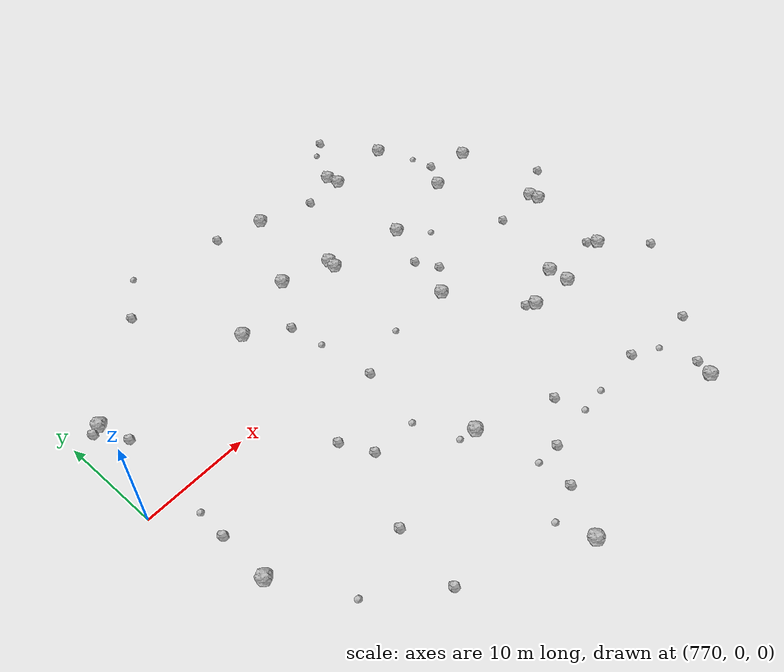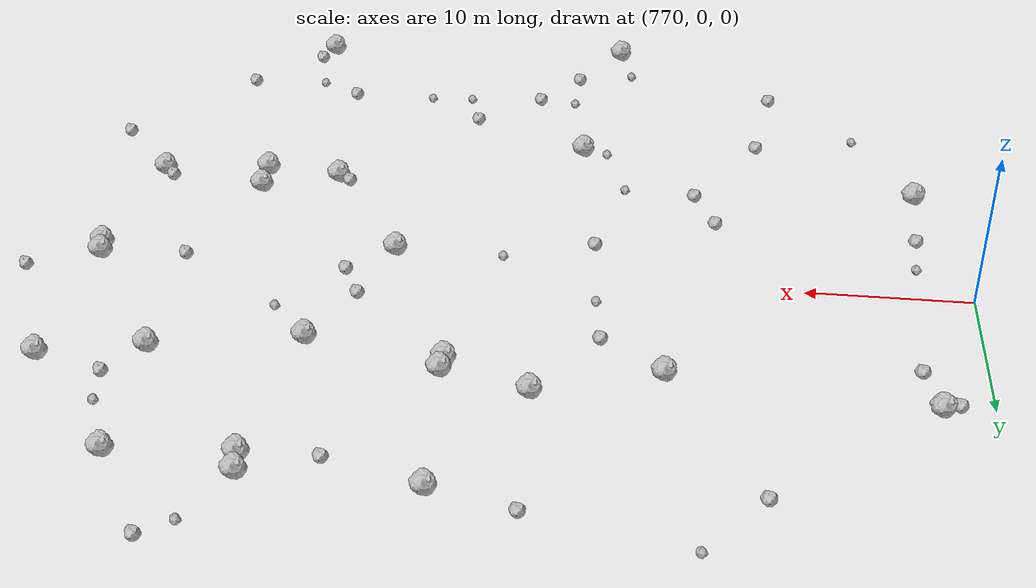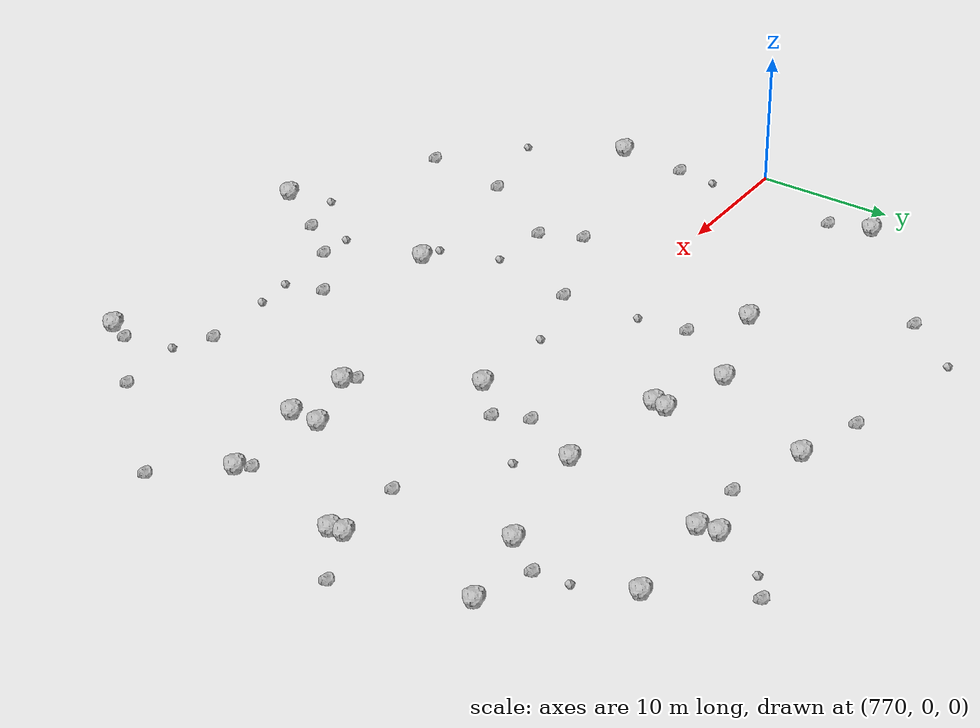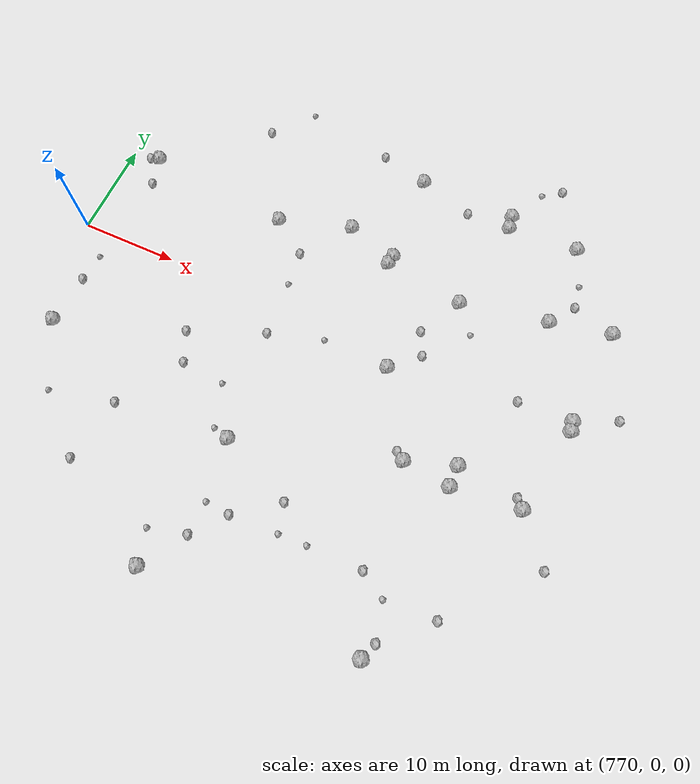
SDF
<sdf version="1.6">
 <world name="default">
  <include><uri>model://sun</uri></include>
  <model name="rock1_20_4">
   <include><uri>model://rock1</uri><pose>800.7657375115118 9.613420747111128 0.5 0 0 0</pose></include>
  </model>
  <model name="rock1_20_5">
   <include><uri>model://rock1</uri><pose>823.0574693880428 -0.7277839166162607 0.5 0 0 0</pose></include>
  </model>
  <model name="rock1_20_6">
   <include><uri>model://rock1</uri><pose>817.6990117163945 9.102365169904786 0.5 0 0 0</pose></include>
  </model>
  <model name="rock1_20_7">
   <include><uri>model://rock1</uri><pose>810.356077601596 19.106996605821976 0.5 0 0 0</pose></include>
  </model>
  <model name="rock1_20_8">
   <include><uri>model://rock1</uri><pose>772.695560163988 -10.854693982110902 0.5 0 0 0</pose></include>
  </model>
  <model name="rock1_20_9">
   <include><uri>model://rock1</uri><pose>800.3334926557901 19.329110910654975 0.5 0 0 0</pose></include>
  </model>
  <model name="rock1_20_10">
   <include><uri>model://rock1</uri><pose>821.2747007292661 -9.519405258005257 0.5 0 0 0</pose></include>
  </model>
  <model name="rock1_20_11">
   <include><uri>model://rock1</uri><pose>800.6173780214094 8.626929190025656 0.5 0 0 0</pose></include>
  </model>
  <model name="rock1_20_12">
   <include><uri>model://rock1</uri><pose>788.1683028917378 8.709266609707214 0.5 0 0 0</pose></include>
  </model>
  <model name="rock1_20_13">
   <include><uri>model://rock1</uri><pose>814.5604219035746 -10.267454587844597 0.5 0 0 0</pose></include>
  </model>
  <model name="rock1_20_14">
   <include><uri>model://rock1</uri><pose>795.5524031208715 10.996119878751372 0.5 0 0 0</pose></include>
  </model>
  <model name="rock1_20_15">
   <include><uri>model://rock1</uri><pose>794.0762119572984 -14.548475158067449 0.5 0 0 0</pose></include>
  </model>
  <model name="rock1_20_16">
   <include><uri>model://rock1</uri><pose>814.5782120369629 -8.131982218055398 0.5 0 0 0</pose></include>
  </model>
  <model name="rock1_20_17">
   <include><uri>model://rock1</uri><pose>809.803125878588 -9.77594432354579 0.5 0 0 0</pose></include>
  </model>
  <model name="rock1_20_18">
   <include><uri>model://rock1</uri><pose>810.5427989974902 17.689002465360502 0.5 0 0 0</pose></include>
  </model>
  <model name="rock1_20_19">
   <include><uri>model://rock1</uri><pose>792.1384223914104 -28.032713333320356 0.5 0 0 0</pose></include>
  </model>
  <model name="rock1_20_20">
   <include><uri>model://rock1</uri><pose>822.9083193554769 0.24401712148151944 0.5 0 0 0</pose></include>
  </model>
  <model name="rock1_20_21">
   <include><uri>model://rock1</uri><pose>772.9733293186408 10.310255731428796 0.5 0 0 0</pose></include>
  </model>
  <model name="rock1_20_22">
   <include><uri>model://rock1</uri><pose>804.914500445096 -1.8892863499394856 0.5 0 0 0</pose></include>
  </model>
  <model name="rock1_20_23">
   <include><uri>model://rock1</uri><pose>812.9977964297371 -26.872935500310994 0.5 0 0 0</pose></include>
  </model>
  <model name="rock1_20_24">
   <include><uri>model://rock1</uri><pose>808.8498688897471 7.431271994059948 0.5 0 0 0</pose></include>
  </model>
  <model name="rock1_20_25">
   <include><uri>model://rock1</uri><pose>817.7799692125452 18.110922802134944 0.5 0 0 0</pose></include>
  </model>
  <model name="rock1_20_26">
   <include><uri>model://rock1</uri><pose>823.8151957602448 10.422299464135804 0.5 0 0 0</pose></include>
  </model>
  <model name="rock2_20_0">
   <include><uri>model://rock2</uri><pose>782.6303327951379 -15.786479802285356 0.3 0 0 0</pose></include>
  </model>
  <model name="rock2_20_1">
   <include><uri>model://rock2</uri><pose>794.8506229728576 -23.822704099357594 0.3 0 0 0</pose></include>
  </model>
  <model name="rock2_20_2">
   <include><uri>model://rock2</uri><pose>782.5699517886472 18.521416337633156 0.3 0 0 0</pose></include>
  </model>
  <model name="rock2_20_3">
   <include><uri>model://rock2</uri><pose>771.999879416149 10.023856605619955 0.3 0 0 0</pose></include>
  </model>
  <model name="rock2_20_4">
   <include><uri>model://rock2</uri><pose>792.6835135353382 -3.4093956811812056 0.3 0 0 0</pose></include>
  </model>
  <model name="rock2_20_5">
   <include><uri>model://rock2</uri><pose>781.634545213184 -22.157641533200255 0.3 0 0 0</pose></include>
  </model>
  <model name="rock2_20_6">
   <include><uri>model://rock2</uri><pose>806.0101434188169 17.626460488375436 0.3 0 0 0</pose></include>
  </model>
  <model name="rock2_20_7">
   <include><uri>model://rock2</uri><pose>810.300896141321 -20.248565061667826 0.3 0 0 0</pose></include>
  </model>
  <model name="rock2_20_8">
   <include><uri>model://rock2</uri><pose>807.5594679932947 0.6307736232613159 0.3 0 0 0</pose></include>
  </model>
  <model name="rock2_20_9">
   <include><uri>model://rock2</uri><pose>791.8691038051887 6.006218925068616 0.3 0 0 0</pose></include>
  </model>
  <model name="rock2_20_10">
   <include><uri>model://rock2</uri><pose>817.5707957541708 0.04190426119297186 0.3 0 0 0</pose></include>
  </model>
  <model name="rock2_20_11">
   <include><uri>model://rock2</uri><pose>820.5424194788785 -8.676995489858271 0.3 0 0 0</pose></include>
  </model>
  <model name="rock2_20_12">
   <include><uri>model://rock2</uri><pose>813.6286869282118 -25.265640473808915 0.3 0 0 0</pose></include>
  </model>
  <model name="rock2_20_13">
   <include><uri>model://rock2</uri><pose>826.9718722984059 2.1420187521156038 0.3 0 0 0</pose></include>
  </model>
  <model name="rock2_20_14">
   <include><uri>model://rock2</uri><pose>773.7544328019367 7.249338703215479 0.3 0 0 0</pose></include>
  </model>
  <model name="rock2_20_15">
   <include><uri>model://rock2</uri><pose>772.9602374190544 -5.730466927613861 0.3 0 0 0</pose></include>
  </model>
  <model name="rock2_20_16">
   <include><uri>model://rock2</uri><pose>801.4322383127271 -17.69177540069668 0.3 0 0 0</pose></include>
  </model>
  <model name="rock2_20_17">
   <include><uri>model://rock2</uri><pose>806.4788391977238 2.9922435287883147 0.3 0 0 0</pose></include>
  </model>
  <model name="rock2_20_18">
   <include><uri>model://rock2</uri><pose>819.5881446504791 11.747737280054714 0.3 0 0 0</pose></include>
  </model>
  <model name="rock2_20_19">
   <include><uri>model://rock2</uri><pose>808.9528829807372 -9.151856689662875 0.3 0 0 0</pose></include>
  </model>
  <model name="rock2_20_20">
   <include><uri>model://rock2</uri><pose>786.6437670740078 -9.495977292310197 0.3 0 0 0</pose></include>
  </model>
  <model name="rock2_20_21">
   <include><uri>model://rock2</uri><pose>814.2982099853228 24.303077103493713 0.3 0 0 0</pose></include>
  </model>
  <model name="rock2_20_22">
   <include><uri>model://rock2</uri><pose>824.7750895439677 -13.801568183748117 0.3 0 0 0</pose></include>
  </model>
  <model name="rock2_20_23">
   <include><uri>model://rock2</uri><pose>785.3072836488146 -6.468630590411543 0.3 0 0 0</pose></include>
  </model>
  <model name="rock2_20_24">
   <include><uri>model://rock2</uri><pose>797.3782894666343 -20.74588458905582 0.3 0 0 0</pose></include>
  </model>
  <model name="rock2_20_25">
   <include><uri>model://rock2</uri><pose>817.7585575224942 -21.425880854081505 0.3 0 0 0</pose></include>
  </model>
  <model name="rock2_20_26">
   <include><uri>model://rock2</uri><pose>795.3155369432574 20.687281184418453 0.3 0 0 0</pose></include>
  </model>
  <model name="rock3_20_0">
   <include><uri>model://rock3</uri><pose>819.2695507267832 14.173673951159913 0.2 0 0 0</pose></include>
  </model>
  <model name="rock3_20_1">
   <include><uri>model://rock3</uri><pose>776.1551431815914 -17.36011914684208 0.2 0 0 0</pose></include>
  </model>
  <model name="rock3_20_2">
   <include><uri>model://rock3</uri><pose>812.7917082591997 -21.780902659407595 0.2 0 0 0</pose></include>
  </model>
  <model name="rock3_20_3">
   <include><uri>model://rock3</uri><pose>812.4368038532356 22.975695616596234 0.2 0 0 0</pose></include>
  </model>
  <model name="rock3_20_4">
   <include><uri>model://rock3</uri><pose>773.1625327068062 -2.812604045987232 0.2 0 0 0</pose></include>
  </model>
  <model name="rock3_20_5">
   <include><uri>model://rock3</uri><pose>792.4325683204822 -14.149171835445546 0.2 0 0 0</pose></include>
  </model>
  <model name="rock3_20_6">
   <include><uri>model://rock3</uri><pose>798.1654743147412 -1.7643080869371062 0.2 0 0 0</pose></include>
  </model>
  <model name="rock3_20_7">
   <include><uri>model://rock3</uri><pose>802.1514300616568 -20.507433304521584 0.2 0 0 0</pose></include>
  </model>
  <model name="rock3_20_8">
   <include><uri>model://rock3</uri><pose>811.0777088767859 4.631979503531653 0.2 0 0 0</pose></include>
  </model>
  <model name="rock3_20_9">
   <include><uri>model://rock3</uri><pose>794.9523992346313 -20.606747369010275 0.2 0 0 0</pose></include>
  </model>
  <model name="rock3_20_10">
   <include><uri>model://rock3</uri><pose>791.0555763715357 -9.914890395000132 0.2 0 0 0</pose></include>
  </model>
  <model name="rock3_20_11">
   <include><uri>model://rock3</uri><pose>791.1965661530431 -24.836687822792165 0.2 0 0 0</pose></include>
  </model>
  <model name="rock3_20_12">
   <include><uri>model://rock3</uri><pose>792.264110341383 2.330158013717252 0.2 0 0 0</pose></include>
  </model>
  <model name="rock3_20_13">
   <include><uri>model://rock3</uri><pose>804.9083130239874 -20.37459594223987 0.2 0 0 0</pose></include>
  </model>
  <model name="rock3_20_14">
   <include><uri>model://rock3</uri><pose>785.9449328421398 22.61569480316186 0.2 0 0 0</pose></include>
  </model>
 </world>
</sdf>
